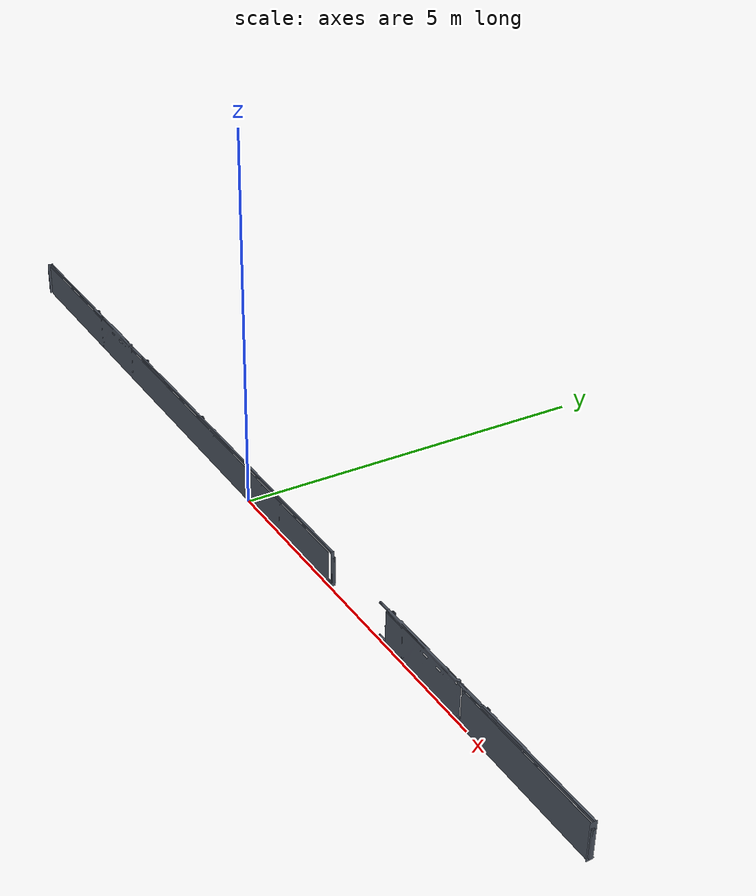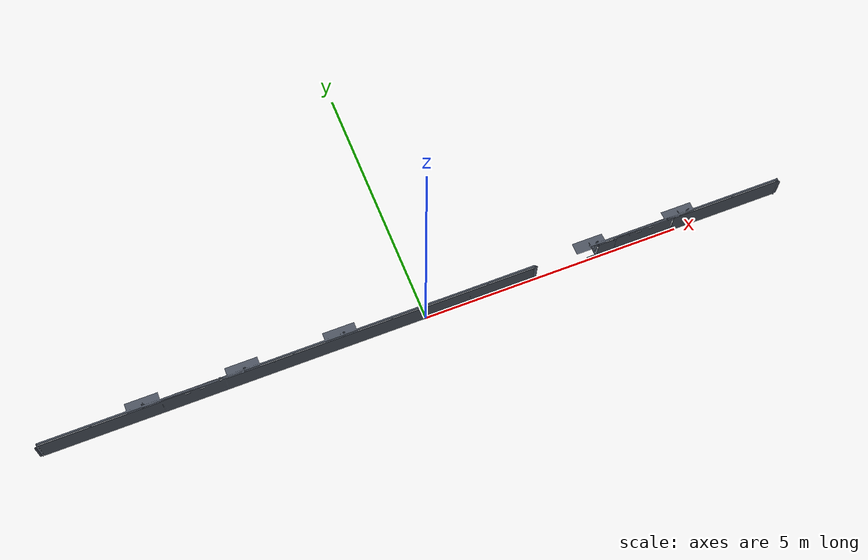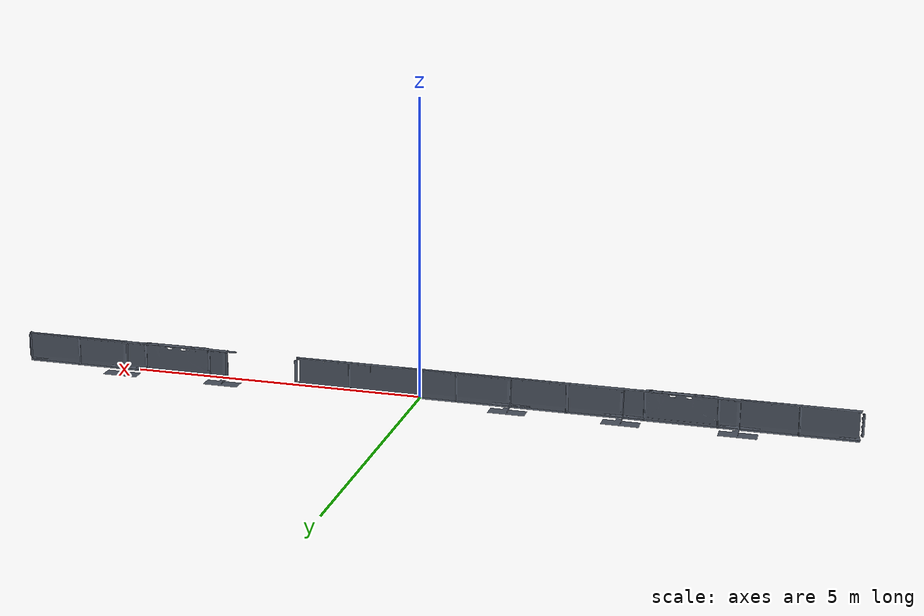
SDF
<?xml version="1.0"?>
<sdf version="1.8">
  <model name="reefscape_field_wall">
    <static>true</static>

    <link name="link">
      <visual name="visual">
        <geometry>
          <mesh>
            <uri>meshes/field_wall.stl</uri>
            <scale>1 1 1</scale>
          </mesh>
        </geometry>
        <material>
          <ambient>0.15 0.16 0.19 1</ambient>
          <diffuse>0.30 0.33 0.38 1</diffuse>
        </material>
      </visual>

      <collision name="collision">
        <geometry>
          <mesh>
            <uri>meshes/field_wall.stl</uri>
            <scale>1 1 1</scale>
          </mesh>
        </geometry>
      </collision>
    </link>
  </model>
</sdf>
